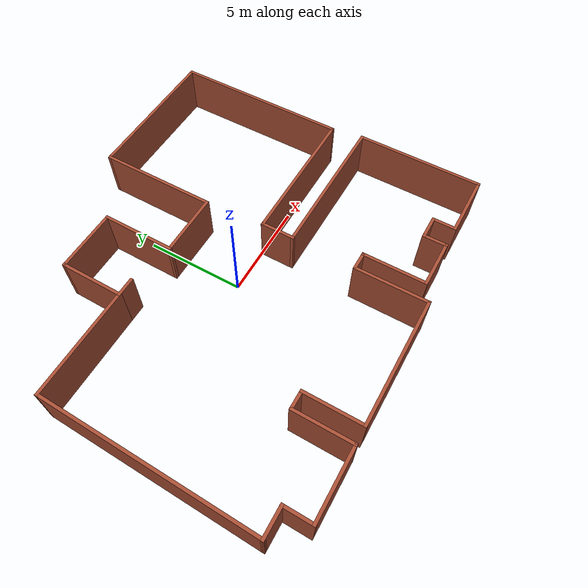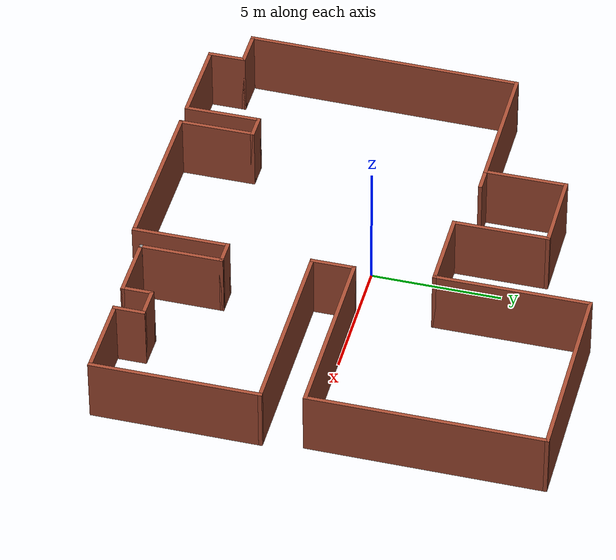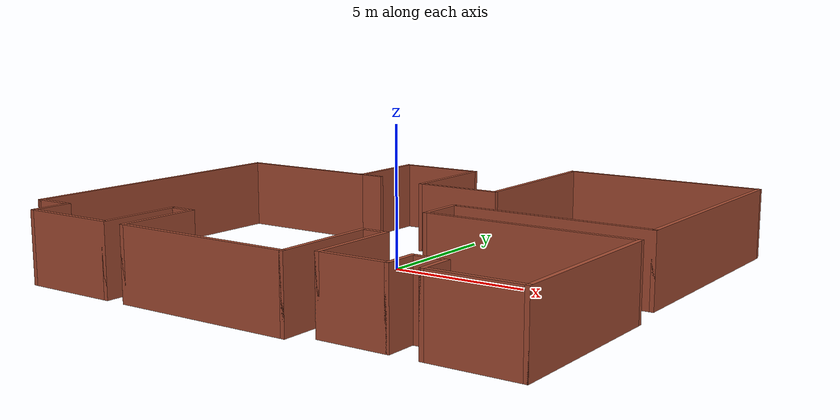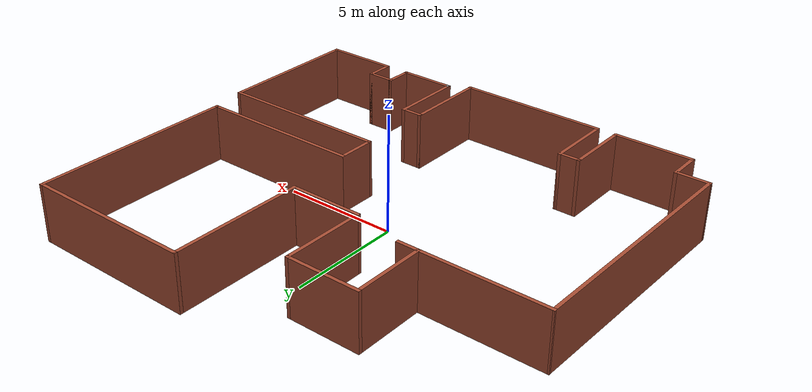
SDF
<?xml version='1.0'?>
<sdf version='1.6'>
  <model name='map_136'>
    <pose frame=''>0.065808 0.110944 0 0 -0 0</pose>
    <link name='Wall_10'>
      <collision name='Wall_10_Collision'>
        <geometry>
          <box>
            <size>3.5 0.15 2.5</size>
          </box>
        </geometry>
        <pose frame=''>0 0 1.25 0 -0 0</pose>
      </collision>
      <visual name='Wall_10_Visual'>
        <pose frame=''>0 0 1.25 0 -0 0</pose>
        <geometry>
          <box>
            <size>3.5 0.15 2.5</size>
          </box>
        </geometry>
        <material>
          <script>
            <uri>file://media/materials/scripts/gazebo.material</uri>
            <name>Gazebo/Bricks</name>
          </script>
          <ambient>1 1 1 1</ambient>
        </material>
        <meta>
          <layer>0</layer>
        </meta>
      </visual>
      <pose frame=''>-6.62447 -8.65 0 0 -0 0</pose>
    </link>
    <link name='Wall_11'>
      <collision name='Wall_11_Collision'>
        <geometry>
          <box>
            <size>3 0.15 2.5</size>
          </box>
        </geometry>
        <pose frame=''>0 0 1.25 0 -0 0</pose>
      </collision>
      <visual name='Wall_11_Visual'>
        <pose frame=''>0 0 1.25 0 -0 0</pose>
        <geometry>
          <box>
            <size>3 0.15 2.5</size>
          </box>
        </geometry>
        <material>
          <script>
            <uri>file://media/materials/scripts/gazebo.material</uri>
            <name>Gazebo/Bricks</name>
          </script>
          <ambient>1 1 1 1</ambient>
        </material>
        <meta>
          <layer>0</layer>
        </meta>
      </visual>
      <pose frame=''>-4.94947 -7.225 0 0 -0 1.5708</pose>
    </link>
    <link name='Wall_12'>
      <collision name='Wall_12_Collision'>
        <geometry>
          <box>
            <size>1 0.15 2.5</size>
          </box>
        </geometry>
        <pose frame=''>0 0 1.25 0 -0 0</pose>
      </collision>
      <visual name='Wall_12_Visual'>
        <pose frame=''>0 0 1.25 0 -0 0</pose>
        <geometry>
          <box>
            <size>1 0.15 2.5</size>
          </box>
        </geometry>
        <material>
          <script>
            <uri>file://media/materials/scripts/gazebo.material</uri>
            <name>Gazebo/Bricks</name>
          </script>
          <ambient>1 1 1 1</ambient>
        </material>
        <meta>
          <layer>0</layer>
        </meta>
      </visual>
      <pose frame=''>-4.52447 -5.8 0 0 -0 0</pose>
    </link>
    <link name='Wall_13'>
      <collision name='Wall_13_Collision'>
        <geometry>
          <box>
            <size>3 0.15 2.5</size>
          </box>
        </geometry>
        <pose frame=''>0 0 1.25 0 -0 0</pose>
      </collision>
      <visual name='Wall_13_Visual'>
        <pose frame=''>0 0 1.25 0 -0 0</pose>
        <geometry>
          <box>
            <size>3 0.15 2.5</size>
          </box>
        </geometry>
        <material>
          <script>
            <uri>file://media/materials/scripts/gazebo.material</uri>
            <name>Gazebo/Bricks</name>
          </script>
          <ambient>1 1 1 1</ambient>
        </material>
        <meta>
          <layer>0</layer>
        </meta>
      </visual>
      <pose frame=''>-4.09947 -7.225 0 0 -0 -1.5708</pose>
    </link>
    <link name='Wall_14'>
      <collision name='Wall_14_Collision'>
        <geometry>
          <box>
            <size>6.5 0.15 2.5</size>
          </box>
        </geometry>
        <pose frame=''>0 0 1.25 0 -0 0</pose>
      </collision>
      <visual name='Wall_14_Visual'>
        <pose frame=''>0 0 1.25 0 -0 0</pose>
        <geometry>
          <box>
            <size>6.5 0.15 2.5</size>
          </box>
        </geometry>
        <material>
          <script>
            <uri>file://media/materials/scripts/gazebo.material</uri>
            <name>Gazebo/Bricks</name>
          </script>
          <ambient>1 1 1 1</ambient>
        </material>
        <meta>
          <layer>0</layer>
        </meta>
      </visual>
      <pose frame=''>-0.924473 -8.65 0 0 -0 0</pose>
    </link>
    <link name='Wall_21'>
      <collision name='Wall_21_Collision'>
        <geometry>
          <box>
            <size>2.5 0.15 2.5</size>
          </box>
        </geometry>
        <pose frame=''>0 0 1.25 0 -0 0</pose>
      </collision>
      <visual name='Wall_21_Visual'>
        <pose frame=''>0 0 1.25 0 -0 0</pose>
        <geometry>
          <box>
            <size>2.5 0.15 2.5</size>
          </box>
        </geometry>
        <material>
          <script>
            <uri>file://media/materials/scripts/gazebo.material</uri>
            <name>Gazebo/Bricks</name>
          </script>
          <ambient>1 1 1 1</ambient>
        </material>
        <meta>
          <layer>0</layer>
        </meta>
      </visual>
      <pose frame=''>4.27553 -8.15 0 0 -0 0</pose>
    </link>
    <link name='Wall_22'>
      <collision name='Wall_22_Collision'>
        <geometry>
          <box>
            <size>1.25 0.15 2.5</size>
          </box>
        </geometry>
        <pose frame=''>0 0 1.25 0 -0 0</pose>
      </collision>
      <visual name='Wall_22_Visual'>
        <pose frame=''>0 0 1.25 0 -0 0</pose>
        <geometry>
          <box>
            <size>1.25 0.15 2.5</size>
          </box>
        </geometry>
        <material>
          <script>
            <uri>file://media/materials/scripts/gazebo.material</uri>
            <name>Gazebo/Bricks</name>
          </script>
          <ambient>1 1 1 1</ambient>
        </material>
        <meta>
          <layer>0</layer>
        </meta>
      </visual>
      <pose frame=''>5.45053 -7.6 0 0 -0 1.5708</pose>
    </link>
    <link name='Wall_23'>
      <collision name='Wall_23_Collision'>
        <geometry>
          <box>
            <size>1.25 0.15 2.5</size>
          </box>
        </geometry>
        <pose frame=''>0 0 1.25 0 -0 0</pose>
      </collision>
      <visual name='Wall_23_Visual'>
        <pose frame=''>0 0 1.25 0 -0 0</pose>
        <geometry>
          <box>
            <size>1.25 0.15 2.5</size>
          </box>
        </geometry>
        <material>
          <script>
            <uri>file://media/materials/scripts/gazebo.material</uri>
            <name>Gazebo/Bricks</name>
          </script>
          <ambient>1 1 1 1</ambient>
        </material>
        <meta>
          <layer>0</layer>
        </meta>
      </visual>
      <pose frame=''>6.00053 -7.05 0 0 -0 0</pose>
    </link>
    <link name='Wall_24'>
      <collision name='Wall_24_Collision'>
        <geometry>
          <box>
            <size>1.25 0.15 2.5</size>
          </box>
        </geometry>
        <pose frame=''>0 0 1.25 0 -0 0</pose>
      </collision>
      <visual name='Wall_24_Visual'>
        <pose frame=''>0 0 1.25 0 -0 0</pose>
        <geometry>
          <box>
            <size>1.25 0.15 2.5</size>
          </box>
        </geometry>
        <material>
          <script>
            <uri>file://media/materials/scripts/gazebo.material</uri>
            <name>Gazebo/Bricks</name>
          </script>
          <ambient>1 1 1 1</ambient>
        </material>
        <meta>
          <layer>0</layer>
        </meta>
      </visual>
      <pose frame=''>6.55053 -7.6 0 0 -0 -1.5708</pose>
    </link>
    <link name='Wall_25'>
      <collision name='Wall_25_Collision'>
        <geometry>
          <box>
            <size>3.25 0.15 2.5</size>
          </box>
        </geometry>
        <pose frame=''>0 0 1.25 0 -0 0</pose>
      </collision>
      <visual name='Wall_25_Visual'>
        <pose frame=''>0 0 1.25 0 -0 0</pose>
        <geometry>
          <box>
            <size>3.25 0.15 2.5</size>
          </box>
        </geometry>
        <material>
          <script>
            <uri>file://media/materials/scripts/gazebo.material</uri>
            <name>Gazebo/Bricks</name>
          </script>
          <ambient>1 1 1 1</ambient>
        </material>
        <meta>
          <layer>0</layer>
        </meta>
      </visual>
      <pose frame=''>8.10053 -8.15 0 0 -0 0</pose>
    </link>
    <link name='Wall_26'>
      <collision name='Wall_26_Collision'>
        <geometry>
          <box>
            <size>6.5 0.15 2.5</size>
          </box>
        </geometry>
        <pose frame=''>0 0 1.25 0 -0 0</pose>
      </collision>
      <visual name='Wall_26_Visual'>
        <pose frame=''>0 0 1.25 0 -0 0</pose>
        <geometry>
          <box>
            <size>6.5 0.15 2.5</size>
          </box>
        </geometry>
        <material>
          <script>
            <uri>file://media/materials/scripts/gazebo.material</uri>
            <name>Gazebo/Bricks</name>
          </script>
          <ambient>1 1 1 1</ambient>
        </material>
        <meta>
          <layer>0</layer>
        </meta>
      </visual>
      <pose frame=''>9.65053 -4.975 0 0 -0 1.5708</pose>
    </link>
    <link name='Wall_28'>
      <collision name='Wall_28_Collision'>
        <geometry>
          <box>
            <size>3.75 0.15 2.5</size>
          </box>
        </geometry>
        <pose frame=''>0 0 1.25 0 -0 0</pose>
      </collision>
      <visual name='Wall_28_Visual'>
        <pose frame=''>0 0 1.25 0 -0 0</pose>
        <geometry>
          <box>
            <size>3.75 0.15 2.5</size>
          </box>
        </geometry>
        <material>
          <script>
            <uri>file://media/materials/scripts/gazebo.material</uri>
            <name>Gazebo/Bricks</name>
          </script>
          <ambient>1 1 1 1</ambient>
        </material>
        <meta>
          <layer>0</layer>
        </meta>
      </visual>
      <pose frame=''>2.25053 -6.85 0 0 -0 1.5708</pose>
    </link>
    <link name='Wall_29'>
      <collision name='Wall_29_Collision'>
        <geometry>
          <box>
            <size>1 0.15 2.5</size>
          </box>
        </geometry>
        <pose frame=''>0 0 1.25 0 -0 0</pose>
      </collision>
      <visual name='Wall_29_Visual'>
        <pose frame=''>0 0 1.25 0 -0 0</pose>
        <geometry>
          <box>
            <size>1 0.15 2.5</size>
          </box>
        </geometry>
        <material>
          <script>
            <uri>file://media/materials/scripts/gazebo.material</uri>
            <name>Gazebo/Bricks</name>
          </script>
          <ambient>1 1 1 1</ambient>
        </material>
        <meta>
          <layer>0</layer>
        </meta>
      </visual>
      <pose frame=''>2.67553 -5.05 0 0 -0 0</pose>
    </link>
    <link name='Wall_31'>
      <collision name='Wall_31_Collision'>
        <geometry>
          <box>
            <size>3.25 0.15 2.5</size>
          </box>
        </geometry>
        <pose frame=''>0 0 1.25 0 -0 0</pose>
      </collision>
      <visual name='Wall_31_Visual'>
        <pose frame=''>0 0 1.25 0 -0 0</pose>
        <geometry>
          <box>
            <size>3.25 0.15 2.5</size>
          </box>
        </geometry>
        <material>
          <script>
            <uri>file://media/materials/scripts/gazebo.material</uri>
            <name>Gazebo/Bricks</name>
          </script>
          <ambient>1 1 1 1</ambient>
        </material>
        <meta>
          <layer>0</layer>
        </meta>
      </visual>
      <pose frame=''>3.10053 -6.6 0 0 -0 -1.5708</pose>
    </link>
    <link name='Wall_32'>
      <collision name='Wall_32_Collision'>
        <geometry>
          <box>
            <size>0.16 0.15 2.5</size>
          </box>
        </geometry>
        <pose frame=''>0 0 1.25 0 -0 0</pose>
      </collision>
      <visual name='Wall_32_Visual'>
        <pose frame=''>0 0 1.25 0 -0 0</pose>
        <geometry>
          <box>
            <size>0.16 0.15 2.5</size>
          </box>
        </geometry>
        <material>
          <script>
            <uri>file://media/materials/scripts/gazebo.material</uri>
            <name>Gazebo/Grey</name>
          </script>
          <ambient>0 0 0 1</ambient>
        </material>
        <meta>
          <layer>0</layer>
        </meta>
      </visual>
      <pose frame=''>3.10553 -8.15 0 0 -0 0</pose>
    </link>
    <link name='Wall_33'>
      <collision name='Wall_33_Collision'>
        <geometry>
          <box>
            <size>7.5 0.15 2.5</size>
          </box>
        </geometry>
        <pose frame=''>0 0 1.25 0 -0 0</pose>
      </collision>
      <visual name='Wall_33_Visual'>
        <pose frame=''>0 0 1.25 0 -0 0</pose>
        <geometry>
          <box>
            <size>7.5 0.15 2.5</size>
          </box>
        </geometry>
        <material>
          <script>
            <uri>file://media/materials/scripts/gazebo.material</uri>
            <name>Gazebo/Bricks</name>
          </script>
          <ambient>1 1 1 1</ambient>
        </material>
        <meta>
          <layer>0</layer>
        </meta>
      </visual>
      <pose frame=''>5.97553 -1.8 0 0 -0 3.14159</pose>
    </link>
    <link name='Wall_34'>
      <collision name='Wall_34_Collision'>
        <geometry>
          <box>
            <size>1.75 0.15 2.5</size>
          </box>
        </geometry>
        <pose frame=''>0 0 1.25 0 -0 0</pose>
      </collision>
      <visual name='Wall_34_Visual'>
        <pose frame=''>0 0 1.25 0 -0 0</pose>
        <geometry>
          <box>
            <size>1.75 0.15 2.5</size>
          </box>
        </geometry>
        <material>
          <script>
            <uri>file://media/materials/scripts/gazebo.material</uri>
            <name>Gazebo/Bricks</name>
          </script>
          <ambient>1 1 1 1</ambient>
        </material>
        <meta>
          <layer>0</layer>
        </meta>
      </visual>
      <pose frame=''>2.30053 -1 0 0 -0 1.5708</pose>
    </link>
    <link name='Wall_35'>
      <collision name='Wall_35_Collision'>
        <geometry>
          <box>
            <size>7.25 0.15 2.5</size>
          </box>
        </geometry>
        <pose frame=''>0 0 1.25 0 -0 0</pose>
      </collision>
      <visual name='Wall_35_Visual'>
        <pose frame=''>0 0 1.25 0 -0 0</pose>
        <geometry>
          <box>
            <size>7.25 0.15 2.5</size>
          </box>
        </geometry>
        <material>
          <script>
            <uri>file://media/materials/scripts/gazebo.material</uri>
            <name>Gazebo/Bricks</name>
          </script>
          <ambient>1 1 1 1</ambient>
        </material>
        <meta>
          <layer>0</layer>
        </meta>
      </visual>
      <pose frame=''>5.85053 -0.2 0 0 -0 0</pose>
    </link>
    <link name='Wall_37'>
      <collision name='Wall_37_Collision'>
        <geometry>
          <box>
            <size>9 0.15 2.5</size>
          </box>
        </geometry>
        <pose frame=''>0 0 1.25 0 -0 0</pose>
      </collision>
      <visual name='Wall_37_Visual'>
        <pose frame=''>0 0 1.25 0 -0 0</pose>
        <geometry>
          <box>
            <size>9 0.15 2.5</size>
          </box>
        </geometry>
        <material>
          <script>
            <uri>file://media/materials/scripts/gazebo.material</uri>
            <name>Gazebo/Bricks</name>
          </script>
          <ambient>1 1 1 1</ambient>
        </material>
        <meta>
          <layer>0</layer>
        </meta>
      </visual>
      <pose frame=''>9.40053 4.225 0 0 -0 1.5708</pose>
    </link>
    <link name='Wall_40'>
      <collision name='Wall_40_Collision'>
        <geometry>
          <box>
            <size>7.5 0.15 2.5</size>
          </box>
        </geometry>
        <pose frame=''>0 0 1.25 0 -0 0</pose>
      </collision>
      <visual name='Wall_40_Visual'>
        <pose frame=''>0 0 1.25 0 -0 0</pose>
        <geometry>
          <box>
            <size>7.5 0.15 2.5</size>
          </box>
        </geometry>
        <material>
          <script>
            <uri>file://media/materials/scripts/gazebo.material</uri>
            <name>Gazebo/Bricks</name>
          </script>
          <ambient>1 1 1 1</ambient>
        </material>
        <meta>
          <layer>0</layer>
        </meta>
      </visual>
      <pose frame=''>5.72553 8.65 0 0 -0 3.14159</pose>
    </link>
    <link name='Wall_41'>
      <collision name='Wall_41_Collision'>
        <geometry>
          <box>
            <size>6 0.15 2.5</size>
          </box>
        </geometry>
        <pose frame=''>0 0 1.25 0 -0 0</pose>
      </collision>
      <visual name='Wall_41_Visual'>
        <pose frame=''>0 0 1.25 0 -0 0</pose>
        <geometry>
          <box>
            <size>6 0.15 2.5</size>
          </box>
        </geometry>
        <material>
          <script>
            <uri>file://media/materials/scripts/gazebo.material</uri>
            <name>Gazebo/Bricks</name>
          </script>
          <ambient>1 1 1 1</ambient>
        </material>
        <meta>
          <layer>0</layer>
        </meta>
      </visual>
      <pose frame=''>2.05053 5.725 0 0 -0 -1.5708</pose>
    </link>
    <link name='Wall_49'>
      <collision name='Wall_49_Collision'>
        <geometry>
          <box>
            <size>3.25 0.15 2.5</size>
          </box>
        </geometry>
        <pose frame=''>0 0 1.25 0 -0 0</pose>
      </collision>
      <visual name='Wall_49_Visual'>
        <pose frame=''>0 0 1.25 0 -0 0</pose>
        <geometry>
          <box>
            <size>3.25 0.15 2.5</size>
          </box>
        </geometry>
        <material>
          <script>
            <uri>file://media/materials/scripts/gazebo.material</uri>
            <name>Gazebo/Bricks</name>
          </script>
          <ambient>1 1 1 1</ambient>
        </material>
        <meta>
          <layer>0</layer>
        </meta>
      </visual>
      <pose frame=''>0.500527 2.8 0 0 -0 3.14159</pose>
    </link>
    <link name='Wall_50'>
      <collision name='Wall_50_Collision'>
        <geometry>
          <box>
            <size>3.75 0.15 2.5</size>
          </box>
        </geometry>
        <pose frame=''>0 0 1.25 0 -0 0</pose>
      </collision>
      <visual name='Wall_50_Visual'>
        <pose frame=''>0 0 1.25 0 -0 0</pose>
        <geometry>
          <box>
            <size>3.75 0.15 2.5</size>
          </box>
        </geometry>
        <material>
          <script>
            <uri>file://media/materials/scripts/gazebo.material</uri>
            <name>Gazebo/Bricks</name>
          </script>
          <ambient>1 1 1 1</ambient>
        </material>
        <meta>
          <layer>0</layer>
        </meta>
      </visual>
      <pose frame=''>-1.04947 4.6 0 0 -0 1.5708</pose>
    </link>
    <link name='Wall_53'>
      <collision name='Wall_53_Collision'>
        <geometry>
          <box>
            <size>3.25 0.15 2.5</size>
          </box>
        </geometry>
        <pose frame=''>0 0 1.25 0 -0 0</pose>
      </collision>
      <visual name='Wall_53_Visual'>
        <pose frame=''>0 0 1.25 0 -0 0</pose>
        <geometry>
          <box>
            <size>3.25 0.15 2.5</size>
          </box>
        </geometry>
        <material>
          <script>
            <uri>file://media/materials/scripts/gazebo.material</uri>
            <name>Gazebo/Bricks</name>
          </script>
          <ambient>1 1 1 1</ambient>
        </material>
        <meta>
          <layer>0</layer>
        </meta>
      </visual>
      <pose frame=''>-2.59947 6.4 0 0 -0 3.14159</pose>
    </link>
    <link name='Wall_54'>
      <collision name='Wall_54_Collision'>
        <geometry>
          <box>
            <size>3.25 0.15 2.5</size>
          </box>
        </geometry>
        <pose frame=''>0 0 1.25 0 -0 0</pose>
      </collision>
      <visual name='Wall_54_Visual'>
        <pose frame=''>0 0 1.25 0 -0 0</pose>
        <geometry>
          <box>
            <size>3.25 0.15 2.5</size>
          </box>
        </geometry>
        <material>
          <script>
            <uri>file://media/materials/scripts/gazebo.material</uri>
            <name>Gazebo/Bricks</name>
          </script>
          <ambient>1 1 1 1</ambient>
        </material>
        <meta>
          <layer>0</layer>
        </meta>
      </visual>
      <pose frame=''>-4.14947 4.85 0 0 -0 -1.5708</pose>
    </link>
    <link name='Wall_55'>
      <collision name='Wall_55_Collision'>
        <geometry>
          <box>
            <size>5.5 0.15 2.5</size>
          </box>
        </geometry>
        <pose frame=''>0 0 1.25 0 -0 0</pose>
      </collision>
      <visual name='Wall_55_Visual'>
        <pose frame=''>0 0 1.25 0 -0 0</pose>
        <geometry>
          <box>
            <size>5.5 0.15 2.5</size>
          </box>
        </geometry>
        <material>
          <script>
            <uri>file://media/materials/scripts/gazebo.material</uri>
            <name>Gazebo/Bricks</name>
          </script>
          <ambient>1 1 1 1</ambient>
        </material>
        <meta>
          <layer>0</layer>
        </meta>
      </visual>
      <pose frame=''>-6.82447 3.3 0 0 -0 3.14159</pose>
    </link>
    <link name='Wall_57'>
      <collision name='Wall_57_Collision'>
        <geometry>
          <box>
            <size>1 0.15 2.5</size>
          </box>
        </geometry>
        <pose frame=''>0 0 1.25 0 -0 0</pose>
      </collision>
      <visual name='Wall_57_Visual'>
        <pose frame=''>0 0 1.25 0 -0 0</pose>
        <geometry>
          <box>
            <size>1 0.15 2.5</size>
          </box>
        </geometry>
        <material>
          <script>
            <uri>file://media/materials/scripts/gazebo.material</uri>
            <name>Gazebo/Bricks</name>
          </script>
          <ambient>1 1 1 1</ambient>
        </material>
        <meta>
          <layer>0</layer>
        </meta>
      </visual>
      <pose frame=''>-3.72447 3.3 0 0 -0 0</pose>
    </link>
    <link name='Wall_59'>
      <collision name='Wall_59_Collision'>
        <geometry>
          <box>
            <size>10.7511 0.15 2.5</size>
          </box>
        </geometry>
        <pose frame=''>0 0 1.25 0 -0 0</pose>
      </collision>
      <visual name='Wall_59_Visual'>
        <pose frame=''>0 0 1.25 0 -0 0</pose>
        <geometry>
          <box>
            <size>10.7511 0.15 2.5</size>
          </box>
        </geometry>
        <material>
          <script>
            <uri>file://media/materials/scripts/gazebo.material</uri>
            <name>Gazebo/Bricks</name>
          </script>
          <ambient>1 1 1 1</ambient>
        </material>
        <meta>
          <layer>0</layer>
        </meta>
      </visual>
      <pose frame=''>-9.57447 -2 0 0 -0 -1.58495</pose>
    </link>
    <link name='Wall_8'>
      <collision name='Wall_8_Collision'>
        <geometry>
          <box>
            <size>1.5 0.15 2.5</size>
          </box>
        </geometry>
        <pose frame=''>0 0 1.25 0 -0 0</pose>
      </collision>
      <visual name='Wall_8_Visual'>
        <pose frame=''>0 0 1.25 0 -0 0</pose>
        <geometry>
          <box>
            <size>1.5 0.15 2.5</size>
          </box>
        </geometry>
        <material>
          <script>
            <uri>file://media/materials/scripts/gazebo.material</uri>
            <name>Gazebo/Bricks</name>
          </script>
          <ambient>1 1 1 1</ambient>
        </material>
        <meta>
          <layer>0</layer>
        </meta>
      </visual>
      <pose frame=''>-8.97447 -7.3 0 0 -0 0</pose>
    </link>
    <link name='Wall_9'>
      <collision name='Wall_9_Collision'>
        <geometry>
          <box>
            <size>1.5 0.15 2.5</size>
          </box>
        </geometry>
        <pose frame=''>0 0 1.25 0 -0 0</pose>
      </collision>
      <visual name='Wall_9_Visual'>
        <pose frame=''>0 0 1.25 0 -0 0</pose>
        <geometry>
          <box>
            <size>1.5 0.15 2.5</size>
          </box>
        </geometry>
        <material>
          <script>
            <uri>file://media/materials/scripts/gazebo.material</uri>
            <name>Gazebo/Bricks</name>
          </script>
          <ambient>1 1 1 1</ambient>
        </material>
        <meta>
          <layer>0</layer>
        </meta>
      </visual>
      <pose frame=''>-8.29947 -7.975 0 0 -0 -1.5708</pose>
    </link>
    <static>1</static>
  </model>
</sdf>
